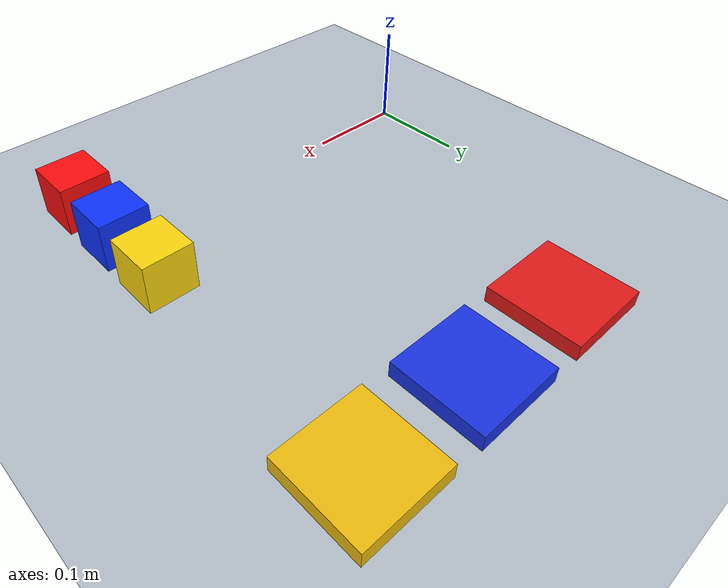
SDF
<?xml version="1.0"?>
<sdf version="1.6">
  <world name="default">
    <light name="sun" type="directional">
      <cast_shadows>true</cast_shadows>
      <pose>0 0 5 0 0 0</pose>
      <diffuse>0.8 0.8 0.8 1</diffuse>
      <specular>0.2 0.2 0.2 1</specular>
      <attenuation>
        <range>1000</range>
        <constant>0.9</constant>
        <linear>0.01</linear>
        <quadratic>0.001</quadratic>
      </attenuation>
      <direction>-0.5 0.1 -0.9</direction>
    </light>

    <model name="ground_plane">
      <static>true</static>
      <link name="link">
        <collision name="collision">
          <geometry><plane><normal>0 0 1</normal><size>4 4</size></plane></geometry>
        </collision>
        <visual name="visual">
          <geometry><plane><normal>0 0 1</normal><size>4 4</size></plane></geometry>
          <material>
            <ambient>0.72 0.76 0.8 1</ambient>
            <diffuse>0.72 0.76 0.8 1</diffuse>
          </material>
        </visual>
      </link>
    </model>

    <model name="red_block">
      <pose>0.36 -0.07 0.025 0 0 0</pose>
      <link name="link">
        <inertial><mass>0.04</mass></inertial>
        <collision name="collision"><geometry><box><size>0.05 0.05 0.05</size></box></geometry></collision>
        <visual name="visual">
          <geometry><box><size>0.05 0.05 0.05</size></box></geometry>
          <material><ambient>1 0.05 0.05 1</ambient><diffuse>1 0.05 0.05 1</diffuse></material>
        </visual>
      </link>
    </model>

    <model name="blue_block">
      <pose>0.36 0.00 0.025 0 0 0</pose>
      <link name="link">
        <inertial><mass>0.04</mass></inertial>
        <collision name="collision"><geometry><box><size>0.05 0.05 0.05</size></box></geometry></collision>
        <visual name="visual">
          <geometry><box><size>0.05 0.05 0.05</size></box></geometry>
          <material><ambient>0.05 0.2 1 1</ambient><diffuse>0.05 0.2 1 1</diffuse></material>
        </visual>
      </link>
    </model>

    <model name="yellow_block">
      <pose>0.36 0.07 0.025 0 0 0</pose>
      <link name="link">
        <inertial><mass>0.04</mass></inertial>
        <collision name="collision"><geometry><box><size>0.05 0.05 0.05</size></box></geometry></collision>
        <visual name="visual">
          <geometry><box><size>0.05 0.05 0.05</size></box></geometry>
          <material><ambient>1 0.85 0.05 1</ambient><diffuse>1 0.85 0.05 1</diffuse></material>
        </visual>
      </link>
    </model>

    <model name="drop_left_bin">
      <static>true</static>
      <pose>0.12 0.32 0.008 0 0 0</pose>
      <link name="link">
        <visual name="visual">
          <geometry><box><size>0.09 0.09 0.016</size></box></geometry>
          <material><ambient>0.9 0.1 0.1 1</ambient><diffuse>0.9 0.1 0.1 1</diffuse></material>
        </visual>
      </link>
    </model>

    <model name="drop_center_bin">
      <static>true</static>
      <pose>0.24 0.32 0.008 0 0 0</pose>
      <link name="link">
        <visual name="visual">
          <geometry><box><size>0.09 0.09 0.016</size></box></geometry>
          <material><ambient>0.1 0.2 0.9 1</ambient><diffuse>0.1 0.2 0.9 1</diffuse></material>
        </visual>
      </link>
    </model>

    <model name="drop_right_bin">
      <static>true</static>
      <pose>0.36 0.32 0.008 0 0 0</pose>
      <link name="link">
        <visual name="visual">
          <geometry><box><size>0.09 0.09 0.016</size></box></geometry>
          <material><ambient>0.95 0.75 0.05 1</ambient><diffuse>0.95 0.75 0.05 1</diffuse></material>
        </visual>
      </link>
    </model>
  </world>
</sdf>
